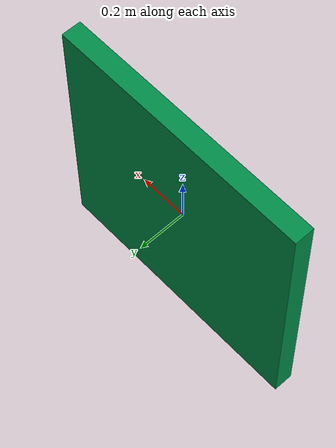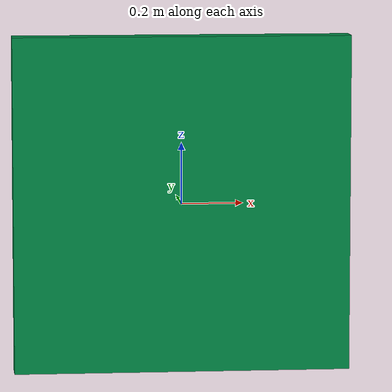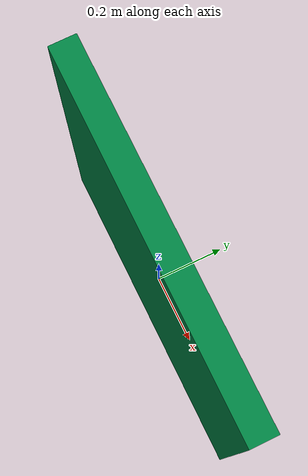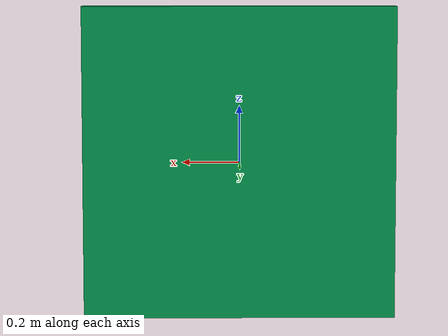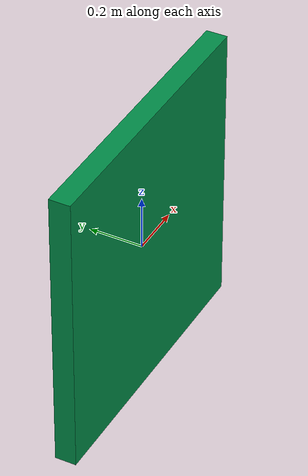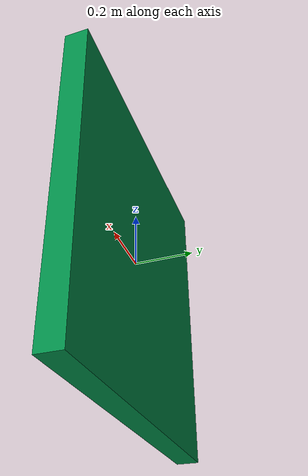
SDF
<?xml version="1.0"?>
<sdf version="1.10">
  <model name="visual-decoy">
    <static>true</static>
    <link name="decoy_panel">
      <visual name="decoy_pattern">
        <geometry>
          <box>
            <size>1.1 0.08 1.1</size>
          </box>
        </geometry>
        <material>
          <ambient>0.0 0.55 0.28 1</ambient>
          <diffuse>0.0 0.55 0.28 1</diffuse>
        </material>
      </visual>
      <collision name="decoy_collision">
        <geometry>
          <box>
            <size>1.1 0.08 1.1</size>
          </box>
        </geometry>
      </collision>
    </link>
  </model>
</sdf>
